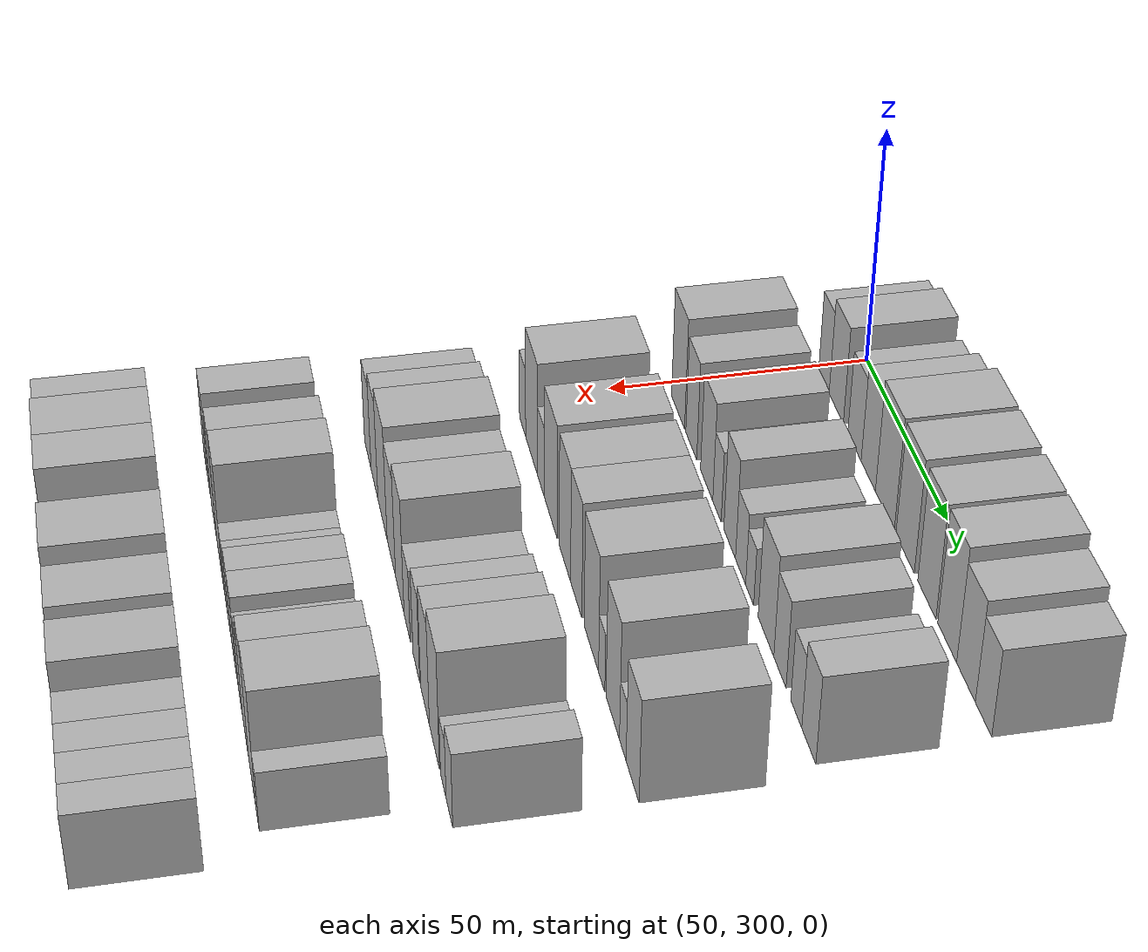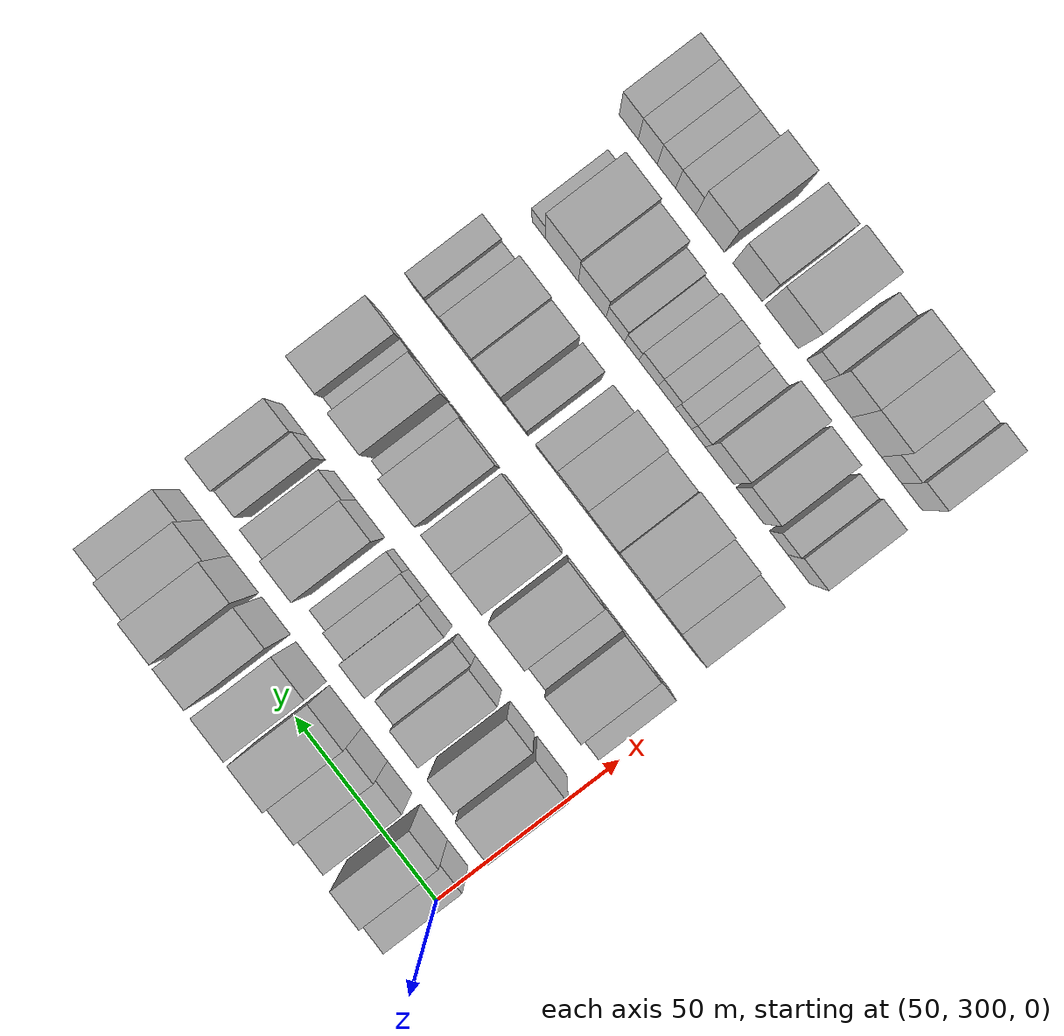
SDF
<sdf version="1.6">
 <world name="default">
  <model name="building_89">
   <static>1</static>
   <pose>50.0000 305.3187 0 0.000000 0.000000 0.000000</pose>
   <link name="link">
    <pose>0 0 9.00 0 0 0</pose>
    <collision name="collision"><geometry><box><size>20.0000 7.3415 18.0000</size></box></geometry></collision>
    <visual name="visual">
     <cast_shadows>0</cast_shadows>
     <geometry><box><size>20.0000 7.3415 18.0000</size></box></geometry>
     <material>
      <script>
       <uri>model://HANNAS_wall/materials/scripts</uri>
       <uri>model://HANNAS_wall/materials/textures</uri>
       <name>vrc/HANNAS_wall</name>
      </script>
     </material>
    </visual>
   </link>
  </model>
  <model name="building_90">
   <static>1</static>
   <pose>50.0000 313.8342 0 0.000000 0.000000 0.000000</pose>
   <link name="link">
    <pose>0 0 10.50 0 0 0</pose>
    <collision name="collision"><geometry><box><size>20.0000 9.6895 21.0000</size></box></geometry></collision>
    <visual name="visual">
     <cast_shadows>0</cast_shadows>
     <geometry><box><size>20.0000 9.6895 21.0000</size></box></geometry>
     <material>
      <script>
       <uri>model://HANNAS_wall/materials/scripts</uri>
       <uri>model://HANNAS_wall/materials/textures</uri>
       <name>vrc/HANNAS_wall</name>
      </script>
     </material>
    </visual>
   </link>
  </model>
  <model name="building_91">
   <static>1</static>
   <pose>50.0000 326.0368 0 0.000000 0.000000 0.000000</pose>
   <link name="link">
    <pose>0 0 9.00 0 0 0</pose>
    <collision name="collision"><geometry><box><size>20.0000 8.7158 18.0000</size></box></geometry></collision>
    <visual name="visual">
     <cast_shadows>0</cast_shadows>
     <geometry><box><size>20.0000 8.7158 18.0000</size></box></geometry>
     <material>
      <script>
       <uri>model://HANNAS_wall/materials/scripts</uri>
       <uri>model://HANNAS_wall/materials/textures</uri>
       <name>vrc/HANNAS_wall</name>
      </script>
     </material>
    </visual>
   </link>
  </model>
  <model name="building_92">
   <static>1</static>
   <pose>50.0000 334.9414 0 0.000000 0.000000 0.000000</pose>
   <link name="link">
    <pose>0 0 10.50 0 0 0</pose>
    <collision name="collision"><geometry><box><size>20.0000 9.0933 21.0000</size></box></geometry></collision>
    <visual name="visual">
     <cast_shadows>0</cast_shadows>
     <geometry><box><size>20.0000 9.0933 21.0000</size></box></geometry>
     <material>
      <script>
       <uri>model://HANNAS_wall/materials/scripts</uri>
       <uri>model://HANNAS_wall/materials/textures</uri>
       <name>vrc/HANNAS_wall</name>
      </script>
     </material>
    </visual>
   </link>
  </model>
  <model name="building_93">
   <static>1</static>
   <pose>50.0000 345.2844 0 0.000000 0.000000 0.000000</pose>
   <link name="link">
    <pose>0 0 12.00 0 0 0</pose>
    <collision name="collision"><geometry><box><size>20.0000 11.5927 24.0000</size></box></geometry></collision>
    <visual name="visual">
     <cast_shadows>0</cast_shadows>
     <geometry><box><size>20.0000 11.5927 24.0000</size></box></geometry>
     <material>
      <script>
       <uri>model://HANNAS_wall/materials/scripts</uri>
       <uri>model://HANNAS_wall/materials/textures</uri>
       <name>vrc/HANNAS_wall</name>
      </script>
     </material>
    </visual>
   </link>
  </model>
  <model name="building_94">
   <static>1</static>
   <pose>50.0000 357.5039 0 0.000000 0.000000 0.000000</pose>
   <link name="link">
    <pose>0 0 12.00 0 0 0</pose>
    <collision name="collision"><geometry><box><size>20.0000 10.8462 24.0000</size></box></geometry></collision>
    <visual name="visual">
     <cast_shadows>0</cast_shadows>
     <geometry><box><size>20.0000 10.8462 24.0000</size></box></geometry>
     <material>
      <script>
       <uri>model://HANNAS_wall/materials/scripts</uri>
       <uri>model://HANNAS_wall/materials/textures</uri>
       <name>vrc/HANNAS_wall</name>
      </script>
     </material>
    </visual>
   </link>
  </model>
  <model name="building_95">
   <static>1</static>
   <pose>50.0000 370.0650 0 0.000000 0.000000 0.000000</pose>
   <link name="link">
    <pose>0 0 12.00 0 0 0</pose>
    <collision name="collision"><geometry><box><size>20.0000 10.2760 24.0000</size></box></geometry></collision>
    <visual name="visual">
     <cast_shadows>0</cast_shadows>
     <geometry><box><size>20.0000 10.2760 24.0000</size></box></geometry>
     <material>
      <script>
       <uri>model://HANNAS_wall/materials/scripts</uri>
       <uri>model://HANNAS_wall/materials/textures</uri>
       <name>vrc/HANNAS_wall</name>
      </script>
     </material>
    </visual>
   </link>
  </model>
  <model name="building_96">
   <static>1</static>
   <pose>50.0000 381.3340 0 0.000000 0.000000 0.000000</pose>
   <link name="link">
    <pose>0 0 12.00 0 0 0</pose>
    <collision name="collision"><geometry><box><size>20.0000 10.2620 24.0000</size></box></geometry></collision>
    <visual name="visual">
     <cast_shadows>0</cast_shadows>
     <geometry><box><size>20.0000 10.2620 24.0000</size></box></geometry>
     <material>
      <script>
       <uri>model://HANNAS_wall/materials/scripts</uri>
       <uri>model://HANNAS_wall/materials/textures</uri>
       <name>vrc/HANNAS_wall</name>
      </script>
     </material>
    </visual>
   </link>
  </model>
  <model name="building_97">
   <static>1</static>
   <pose>50.0000 391.3692 0 0.000000 0.000000 0.000000</pose>
   <link name="link">
    <pose>0 0 10.50 0 0 0</pose>
    <collision name="collision"><geometry><box><size>20.0000 9.8085 21.0000</size></box></geometry></collision>
    <visual name="visual">
     <cast_shadows>0</cast_shadows>
     <geometry><box><size>20.0000 9.8085 21.0000</size></box></geometry>
     <material>
      <script>
       <uri>model://HANNAS_wall/materials/scripts</uri>
       <uri>model://HANNAS_wall/materials/textures</uri>
       <name>vrc/HANNAS_wall</name>
      </script>
     </material>
    </visual>
   </link>
  </model>
  <model name="building_98">
   <static>1</static>
   <pose>50.0000 400.4323 0 0.000000 0.000000 0.000000</pose>
   <link name="link">
    <pose>0 0 9.00 0 0 0</pose>
    <collision name="collision"><geometry><box><size>20.0000 8.3176 18.0000</size></box></geometry></collision>
    <visual name="visual">
     <cast_shadows>0</cast_shadows>
     <geometry><box><size>20.0000 8.3176 18.0000</size></box></geometry>
     <material>
      <script>
       <uri>model://HANNAS_wall/materials/scripts</uri>
       <uri>model://HANNAS_wall/materials/textures</uri>
       <name>vrc/HANNAS_wall</name>
      </script>
     </material>
    </visual>
   </link>
  </model>
  <model name="building_200">
   <static>1</static>
   <pose>79.0000 309.6515 0 0.000000 0.000000 0.000000</pose>
   <link name="link">
    <pose>0 0 12.00 0 0 0</pose>
    <collision name="collision"><geometry><box><size>20.0000 10.6163 24.0000</size></box></geometry></collision>
    <visual name="visual">
     <cast_shadows>0</cast_shadows>
     <geometry><box><size>20.0000 10.6163 24.0000</size></box></geometry>
     <material>
      <script>
       <uri>model://HANNAS_wall/materials/scripts</uri>
       <uri>model://HANNAS_wall/materials/textures</uri>
       <name>vrc/HANNAS_wall</name>
      </script>
     </material>
    </visual>
   </link>
  </model>
  <model name="building_201">
   <static>1</static>
   <pose>79.0000 320.2581 0 0.000000 0.000000 0.000000</pose>
   <link name="link">
    <pose>0 0 10.50 0 0 0</pose>
    <collision name="collision"><geometry><box><size>20.0000 8.5968 21.0000</size></box></geometry></collision>
    <visual name="visual">
     <cast_shadows>0</cast_shadows>
     <geometry><box><size>20.0000 8.5968 21.0000</size></box></geometry>
     <material>
      <script>
       <uri>model://HANNAS_wall/materials/scripts</uri>
       <uri>model://HANNAS_wall/materials/textures</uri>
       <name>vrc/HANNAS_wall</name>
      </script>
     </material>
    </visual>
   </link>
  </model>
  <model name="building_202">
   <static>1</static>
   <pose>79.0000 332.2292 0 0.000000 0.000000 0.000000</pose>
   <link name="link">
    <pose>0 0 10.50 0 0 0</pose>
    <collision name="collision"><geometry><box><size>20.0000 9.3454 21.0000</size></box></geometry></collision>
    <visual name="visual">
     <cast_shadows>0</cast_shadows>
     <geometry><box><size>20.0000 9.3454 21.0000</size></box></geometry>
     <material>
      <script>
       <uri>model://HANNAS_wall/materials/scripts</uri>
       <uri>model://HANNAS_wall/materials/textures</uri>
       <name>vrc/HANNAS_wall</name>
      </script>
     </material>
    </visual>
   </link>
  </model>
  <model name="building_203">
   <static>1</static>
   <pose>79.0000 339.9858 0 0.000000 0.000000 0.000000</pose>
   <link name="link">
    <pose>0 0 7.50 0 0 0</pose>
    <collision name="collision"><geometry><box><size>20.0000 6.1678 15.0000</size></box></geometry></collision>
    <visual name="visual">
     <cast_shadows>0</cast_shadows>
     <geometry><box><size>20.0000 6.1678 15.0000</size></box></geometry>
     <material>
      <script>
       <uri>model://HANNAS_wall/materials/scripts</uri>
       <uri>model://HANNAS_wall/materials/textures</uri>
       <name>vrc/HANNAS_wall</name>
      </script>
     </material>
    </visual>
   </link>
  </model>
  <model name="building_204">
   <static>1</static>
   <pose>79.0000 349.2821 0 0.000000 0.000000 0.000000</pose>
   <link name="link">
    <pose>0 0 10.50 0 0 0</pose>
    <collision name="collision"><geometry><box><size>20.0000 8.4247 21.0000</size></box></geometry></collision>
    <visual name="visual">
     <cast_shadows>0</cast_shadows>
     <geometry><box><size>20.0000 8.4247 21.0000</size></box></geometry>
     <material>
      <script>
       <uri>model://HANNAS_wall/materials/scripts</uri>
       <uri>model://HANNAS_wall/materials/textures</uri>
       <name>vrc/HANNAS_wall</name>
      </script>
     </material>
    </visual>
   </link>
  </model>
  <model name="building_205">
   <static>1</static>
   <pose>79.0000 357.0558 0 0.000000 0.000000 0.000000</pose>
   <link name="link">
    <pose>0 0 7.50 0 0 0</pose>
    <collision name="collision"><geometry><box><size>20.0000 7.1227 15.0000</size></box></geometry></collision>
    <visual name="visual">
     <cast_shadows>0</cast_shadows>
     <geometry><box><size>20.0000 7.1227 15.0000</size></box></geometry>
     <material>
      <script>
       <uri>model://HANNAS_wall/materials/scripts</uri>
       <uri>model://HANNAS_wall/materials/textures</uri>
       <name>vrc/HANNAS_wall</name>
      </script>
     </material>
    </visual>
   </link>
  </model>
  <model name="building_206">
   <static>1</static>
   <pose>79.0000 363.3635 0 0.000000 0.000000 0.000000</pose>
   <link name="link">
    <pose>0 0 6.00 0 0 0</pose>
    <collision name="collision"><geometry><box><size>20.0000 5.4928 12.0000</size></box></geometry></collision>
    <visual name="visual">
     <cast_shadows>0</cast_shadows>
     <geometry><box><size>20.0000 5.4928 12.0000</size></box></geometry>
     <material>
      <script>
       <uri>model://HANNAS_wall/materials/scripts</uri>
       <uri>model://HANNAS_wall/materials/textures</uri>
       <name>vrc/HANNAS_wall</name>
      </script>
     </material>
    </visual>
   </link>
  </model>
  <model name="building_207">
   <static>1</static>
   <pose>79.0000 374.3044 0 0.000000 0.000000 0.000000</pose>
   <link name="link">
    <pose>0 0 10.50 0 0 0</pose>
    <collision name="collision"><geometry><box><size>20.0000 10.3889 21.0000</size></box></geometry></collision>
    <visual name="visual">
     <cast_shadows>0</cast_shadows>
     <geometry><box><size>20.0000 10.3889 21.0000</size></box></geometry>
     <material>
      <script>
       <uri>model://HANNAS_wall/materials/scripts</uri>
       <uri>model://HANNAS_wall/materials/textures</uri>
       <name>vrc/HANNAS_wall</name>
      </script>
     </material>
    </visual>
   </link>
  </model>
  <model name="building_208">
   <static>1</static>
   <pose>79.0000 383.3989 0 0.000000 0.000000 0.000000</pose>
   <link name="link">
    <pose>0 0 9.00 0 0 0</pose>
    <collision name="collision"><geometry><box><size>20.0000 7.8001 18.0000</size></box></geometry></collision>
    <visual name="visual">
     <cast_shadows>0</cast_shadows>
     <geometry><box><size>20.0000 7.8001 18.0000</size></box></geometry>
     <material>
      <script>
       <uri>model://HANNAS_wall/materials/scripts</uri>
       <uri>model://HANNAS_wall/materials/textures</uri>
       <name>vrc/HANNAS_wall</name>
      </script>
     </material>
    </visual>
   </link>
  </model>
  <model name="building_209">
   <static>1</static>
   <pose>79.0000 393.6834 0 0.000000 0.000000 0.000000</pose>
   <link name="link">
    <pose>0 0 7.50 0 0 0</pose>
    <collision name="collision"><geometry><box><size>20.0000 6.7689 15.0000</size></box></geometry></collision>
    <visual name="visual">
     <cast_shadows>0</cast_shadows>
     <geometry><box><size>20.0000 6.7689 15.0000</size></box></geometry>
     <material>
      <script>
       <uri>model://HANNAS_wall/materials/scripts</uri>
       <uri>model://HANNAS_wall/materials/textures</uri>
       <name>vrc/HANNAS_wall</name>
      </script>
     </material>
    </visual>
   </link>
  </model>
  <model name="building_210">
   <static>1</static>
   <pose>79.0000 401.2757 0 0.000000 0.000000 0.000000</pose>
   <link name="link">
    <pose>0 0 9.00 0 0 0</pose>
    <collision name="collision"><geometry><box><size>20.0000 8.4157 18.0000</size></box></geometry></collision>
    <visual name="visual">
     <cast_shadows>0</cast_shadows>
     <geometry><box><size>20.0000 8.4157 18.0000</size></box></geometry>
     <material>
      <script>
       <uri>model://HANNAS_wall/materials/scripts</uri>
       <uri>model://HANNAS_wall/materials/textures</uri>
       <name>vrc/HANNAS_wall</name>
      </script>
     </material>
    </visual>
   </link>
  </model>
  <model name="building_320">
   <static>1</static>
   <pose>108.0000 308.8169 0 0.000000 0.000000 0.000000</pose>
   <link name="link">
    <pose>0 0 7.50 0 0 0</pose>
    <collision name="collision"><geometry><box><size>20.0000 6.3034 15.0000</size></box></geometry></collision>
    <visual name="visual">
     <cast_shadows>0</cast_shadows>
     <geometry><box><size>20.0000 6.3034 15.0000</size></box></geometry>
     <material>
      <script>
       <uri>model://HANNAS_wall/materials/scripts</uri>
       <uri>model://HANNAS_wall/materials/textures</uri>
       <name>vrc/HANNAS_wall</name>
      </script>
     </material>
    </visual>
   </link>
  </model>
  <model name="building_321">
   <static>1</static>
   <pose>108.0000 317.8354 0 0.000000 0.000000 0.000000</pose>
   <link name="link">
    <pose>0 0 12.00 0 0 0</pose>
    <collision name="collision"><geometry><box><size>20.0000 11.7336 24.0000</size></box></geometry></collision>
    <visual name="visual">
     <cast_shadows>0</cast_shadows>
     <geometry><box><size>20.0000 11.7336 24.0000</size></box></geometry>
     <material>
      <script>
       <uri>model://HANNAS_wall/materials/scripts</uri>
       <uri>model://HANNAS_wall/materials/textures</uri>
       <name>vrc/HANNAS_wall</name>
      </script>
     </material>
    </visual>
   </link>
  </model>
  <model name="building_322">
   <static>1</static>
   <pose>108.0000 326.9706 0 0.000000 0.000000 0.000000</pose>
   <link name="link">
    <pose>0 0 7.50 0 0 0</pose>
    <collision name="collision"><geometry><box><size>20.0000 6.5367 15.0000</size></box></geometry></collision>
    <visual name="visual">
     <cast_shadows>0</cast_shadows>
     <geometry><box><size>20.0000 6.5367 15.0000</size></box></geometry>
     <material>
      <script>
       <uri>model://HANNAS_wall/materials/scripts</uri>
       <uri>model://HANNAS_wall/materials/textures</uri>
       <name>vrc/HANNAS_wall</name>
      </script>
     </material>
    </visual>
   </link>
  </model>
  <model name="building_323">
   <static>1</static>
   <pose>108.0000 336.1850 0 0.000000 0.000000 0.000000</pose>
   <link name="link">
    <pose>0 0 12.00 0 0 0</pose>
    <collision name="collision"><geometry><box><size>20.0000 11.8922 24.0000</size></box></geometry></collision>
    <visual name="visual">
     <cast_shadows>0</cast_shadows>
     <geometry><box><size>20.0000 11.8922 24.0000</size></box></geometry>
     <material>
      <script>
       <uri>model://HANNAS_wall/materials/scripts</uri>
       <uri>model://HANNAS_wall/materials/textures</uri>
       <name>vrc/HANNAS_wall</name>
      </script>
     </material>
    </visual>
   </link>
  </model>
  <model name="building_324">
   <static>1</static>
   <pose>108.0000 349.2009 0 0.000000 0.000000 0.000000</pose>
   <link name="link">
    <pose>0 0 12.00 0 0 0</pose>
    <collision name="collision"><geometry><box><size>20.0000 10.1397 24.0000</size></box></geometry></collision>
    <visual name="visual">
     <cast_shadows>0</cast_shadows>
     <geometry><box><size>20.0000 10.1397 24.0000</size></box></geometry>
     <material>
      <script>
       <uri>model://HANNAS_wall/materials/scripts</uri>
       <uri>model://HANNAS_wall/materials/textures</uri>
       <name>vrc/HANNAS_wall</name>
      </script>
     </material>
    </visual>
   </link>
  </model>
  <model name="building_325">
   <static>1</static>
   <pose>108.0000 359.1235 0 0.000000 0.000000 0.000000</pose>
   <link name="link">
    <pose>0 0 12.00 0 0 0</pose>
    <collision name="collision"><geometry><box><size>20.0000 9.7056 24.0000</size></box></geometry></collision>
    <visual name="visual">
     <cast_shadows>0</cast_shadows>
     <geometry><box><size>20.0000 9.7056 24.0000</size></box></geometry>
     <material>
      <script>
       <uri>model://HANNAS_wall/materials/scripts</uri>
       <uri>model://HANNAS_wall/materials/textures</uri>
       <name>vrc/HANNAS_wall</name>
      </script>
     </material>
    </visual>
   </link>
  </model>
  <model name="building_326">
   <static>1</static>
   <pose>108.0000 371.9146 0 0.000000 0.000000 0.000000</pose>
   <link name="link">
    <pose>0 0 12.00 0 0 0</pose>
    <collision name="collision"><geometry><box><size>20.0000 11.8764 24.0000</size></box></geometry></collision>
    <visual name="visual">
     <cast_shadows>0</cast_shadows>
     <geometry><box><size>20.0000 11.8764 24.0000</size></box></geometry>
     <material>
      <script>
       <uri>model://HANNAS_wall/materials/scripts</uri>
       <uri>model://HANNAS_wall/materials/textures</uri>
       <name>vrc/HANNAS_wall</name>
      </script>
     </material>
    </visual>
   </link>
  </model>
  <model name="building_327">
   <static>1</static>
   <pose>108.0000 380.3528 0 0.000000 0.000000 0.000000</pose>
   <link name="link">
    <pose>0 0 6.00 0 0 0</pose>
    <collision name="collision"><geometry><box><size>20.0000 5.0001 12.0000</size></box></geometry></collision>
    <visual name="visual">
     <cast_shadows>0</cast_shadows>
     <geometry><box><size>20.0000 5.0001 12.0000</size></box></geometry>
     <material>
      <script>
       <uri>model://HANNAS_wall/materials/scripts</uri>
       <uri>model://HANNAS_wall/materials/textures</uri>
       <name>vrc/HANNAS_wall</name>
      </script>
     </material>
    </visual>
   </link>
  </model>
  <model name="building_328">
   <static>1</static>
   <pose>108.0000 389.0569 0 0.000000 0.000000 0.000000</pose>
   <link name="link">
    <pose>0 0 12.00 0 0 0</pose>
    <collision name="collision"><geometry><box><size>20.0000 10.4081 24.0000</size></box></geometry></collision>
    <visual name="visual">
     <cast_shadows>0</cast_shadows>
     <geometry><box><size>20.0000 10.4081 24.0000</size></box></geometry>
     <material>
      <script>
       <uri>model://HANNAS_wall/materials/scripts</uri>
       <uri>model://HANNAS_wall/materials/textures</uri>
       <name>vrc/HANNAS_wall</name>
      </script>
     </material>
    </visual>
   </link>
  </model>
  <model name="building_329">
   <static>1</static>
   <pose>108.0000 396.7579 0 0.000000 0.000000 0.000000</pose>
   <link name="link">
    <pose>0 0 6.00 0 0 0</pose>
    <collision name="collision"><geometry><box><size>20.0000 4.9939 12.0000</size></box></geometry></collision>
    <visual name="visual">
     <cast_shadows>0</cast_shadows>
     <geometry><box><size>20.0000 4.9939 12.0000</size></box></geometry>
     <material>
      <script>
       <uri>model://HANNAS_wall/materials/scripts</uri>
       <uri>model://HANNAS_wall/materials/textures</uri>
       <name>vrc/HANNAS_wall</name>
      </script>
     </material>
    </visual>
   </link>
  </model>
  <model name="building_330">
   <static>1</static>
   <pose>108.0000 404.0358 0 0.000000 0.000000 0.000000</pose>
   <link name="link">
    <pose>0 0 10.50 0 0 0</pose>
    <collision name="collision"><geometry><box><size>20.0000 9.5619 21.0000</size></box></geometry></collision>
    <visual name="visual">
     <cast_shadows>0</cast_shadows>
     <geometry><box><size>20.0000 9.5619 21.0000</size></box></geometry>
     <material>
      <script>
       <uri>model://HANNAS_wall/materials/scripts</uri>
       <uri>model://HANNAS_wall/materials/textures</uri>
       <name>vrc/HANNAS_wall</name>
      </script>
     </material>
    </visual>
   </link>
  </model>
  <model name="building_434">
   <static>1</static>
   <pose>137.0000 312.1959 0 0.000000 0.000000 0.000000</pose>
   <link name="link">
    <pose>0 0 9.00 0 0 0</pose>
    <collision name="collision"><geometry><box><size>20.0000 8.8097 18.0000</size></box></geometry></collision>
    <visual name="visual">
     <cast_shadows>0</cast_shadows>
     <geometry><box><size>20.0000 8.8097 18.0000</size></box></geometry>
     <material>
      <script>
       <uri>model://HANNAS_wall/materials/scripts</uri>
       <uri>model://HANNAS_wall/materials/textures</uri>
       <name>vrc/HANNAS_wall</name>
      </script>
     </material>
    </visual>
   </link>
  </model>
  <model name="building_435">
   <static>1</static>
   <pose>137.0000 321.1087 0 0.000000 0.000000 0.000000</pose>
   <link name="link">
    <pose>0 0 10.50 0 0 0</pose>
    <collision name="collision"><geometry><box><size>20.0000 9.0159 21.0000</size></box></geometry></collision>
    <visual name="visual">
     <cast_shadows>0</cast_shadows>
     <geometry><box><size>20.0000 9.0159 21.0000</size></box></geometry>
     <material>
      <script>
       <uri>model://HANNAS_wall/materials/scripts</uri>
       <uri>model://HANNAS_wall/materials/textures</uri>
       <name>vrc/HANNAS_wall</name>
      </script>
     </material>
    </visual>
   </link>
  </model>
  <model name="building_436">
   <static>1</static>
   <pose>137.0000 331.4161 0 0.000000 0.000000 0.000000</pose>
   <link name="link">
    <pose>0 0 12.00 0 0 0</pose>
    <collision name="collision"><geometry><box><size>20.0000 11.5988 24.0000</size></box></geometry></collision>
    <visual name="visual">
     <cast_shadows>0</cast_shadows>
     <geometry><box><size>20.0000 11.5988 24.0000</size></box></geometry>
     <material>
      <script>
       <uri>model://HANNAS_wall/materials/scripts</uri>
       <uri>model://HANNAS_wall/materials/textures</uri>
       <name>vrc/HANNAS_wall</name>
      </script>
     </material>
    </visual>
   </link>
  </model>
  <model name="building_437">
   <static>1</static>
   <pose>137.0000 342.3641 0 0.000000 0.000000 0.000000</pose>
   <link name="link">
    <pose>0 0 10.50 0 0 0</pose>
    <collision name="collision"><geometry><box><size>20.0000 10.2972 21.0000</size></box></geometry></collision>
    <visual name="visual">
     <cast_shadows>0</cast_shadows>
     <geometry><box><size>20.0000 10.2972 21.0000</size></box></geometry>
     <material>
      <script>
       <uri>model://HANNAS_wall/materials/scripts</uri>
       <uri>model://HANNAS_wall/materials/textures</uri>
       <name>vrc/HANNAS_wall</name>
      </script>
     </material>
    </visual>
   </link>
  </model>
  <model name="building_438">
   <static>1</static>
   <pose>137.0000 352.5214 0 0.000000 0.000000 0.000000</pose>
   <link name="link">
    <pose>0 0 12.00 0 0 0</pose>
    <collision name="collision"><geometry><box><size>20.0000 10.0173 24.0000</size></box></geometry></collision>
    <visual name="visual">
     <cast_shadows>0</cast_shadows>
     <geometry><box><size>20.0000 10.0173 24.0000</size></box></geometry>
     <material>
      <script>
       <uri>model://HANNAS_wall/materials/scripts</uri>
       <uri>model://HANNAS_wall/materials/textures</uri>
       <name>vrc/HANNAS_wall</name>
      </script>
     </material>
    </visual>
   </link>
  </model>
  <model name="building_439">
   <static>1</static>
   <pose>137.0000 361.1345 0 0.000000 0.000000 0.000000</pose>
   <link name="link">
    <pose>0 0 7.50 0 0 0</pose>
    <collision name="collision"><geometry><box><size>20.0000 7.2091 15.0000</size></box></geometry></collision>
    <visual name="visual">
     <cast_shadows>0</cast_shadows>
     <geometry><box><size>20.0000 7.2091 15.0000</size></box></geometry>
     <material>
      <script>
       <uri>model://HANNAS_wall/materials/scripts</uri>
       <uri>model://HANNAS_wall/materials/textures</uri>
       <name>vrc/HANNAS_wall</name>
      </script>
     </material>
    </visual>
   </link>
  </model>
  <model name="building_440">
   <static>1</static>
   <pose>137.0000 371.4395 0 0.000000 0.000000 0.000000</pose>
   <link name="link">
    <pose>0 0 9.00 0 0 0</pose>
    <collision name="collision"><geometry><box><size>20.0000 7.4009 18.0000</size></box></geometry></collision>
    <visual name="visual">
     <cast_shadows>0</cast_shadows>
     <geometry><box><size>20.0000 7.4009 18.0000</size></box></geometry>
     <material>
      <script>
       <uri>model://HANNAS_wall/materials/scripts</uri>
       <uri>model://HANNAS_wall/materials/textures</uri>
       <name>vrc/HANNAS_wall</name>
      </script>
     </material>
    </visual>
   </link>
  </model>
  <model name="building_441">
   <static>1</static>
   <pose>137.0000 380.7924 0 0.000000 0.000000 0.000000</pose>
   <link name="link">
    <pose>0 0 10.50 0 0 0</pose>
    <collision name="collision"><geometry><box><size>20.0000 9.3047 21.0000</size></box></geometry></collision>
    <visual name="visual">
     <cast_shadows>0</cast_shadows>
     <geometry><box><size>20.0000 9.3047 21.0000</size></box></geometry>
     <material>
      <script>
       <uri>model://HANNAS_wall/materials/scripts</uri>
       <uri>model://HANNAS_wall/materials/textures</uri>
       <name>vrc/HANNAS_wall</name>
      </script>
     </material>
    </visual>
   </link>
  </model>
  <model name="building_442">
   <static>1</static>
   <pose>137.0000 390.6415 0 0.000000 0.000000 0.000000</pose>
   <link name="link">
    <pose>0 0 12.00 0 0 0</pose>
    <collision name="collision"><geometry><box><size>20.0000 10.3936 24.0000</size></box></geometry></collision>
    <visual name="visual">
     <cast_shadows>0</cast_shadows>
     <geometry><box><size>20.0000 10.3936 24.0000</size></box></geometry>
     <material>
      <script>
       <uri>model://HANNAS_wall/materials/scripts</uri>
       <uri>model://HANNAS_wall/materials/textures</uri>
       <name>vrc/HANNAS_wall</name>
      </script>
     </material>
    </visual>
   </link>
  </model>
  <model name="building_443">
   <static>1</static>
   <pose>137.0000 399.5806 0 0.000000 0.000000 0.000000</pose>
   <link name="link">
    <pose>0 0 6.00 0 0 0</pose>
    <collision name="collision"><geometry><box><size>20.0000 5.4845 12.0000</size></box></geometry></collision>
    <visual name="visual">
     <cast_shadows>0</cast_shadows>
     <geometry><box><size>20.0000 5.4845 12.0000</size></box></geometry>
     <material>
      <script>
       <uri>model://HANNAS_wall/materials/scripts</uri>
       <uri>model://HANNAS_wall/materials/textures</uri>
       <name>vrc/HANNAS_wall</name>
      </script>
     </material>
    </visual>
   </link>
  </model>
  <model name="building_444">
   <static>1</static>
   <pose>137.0000 405.5585 0 0.000000 0.000000 0.000000</pose>
   <link name="link">
    <pose>0 0 7.50 0 0 0</pose>
    <collision name="collision"><geometry><box><size>20.0000 6.4713 15.0000</size></box></geometry></collision>
    <visual name="visual">
     <cast_shadows>0</cast_shadows>
     <geometry><box><size>20.0000 6.4713 15.0000</size></box></geometry>
     <material>
      <script>
       <uri>model://HANNAS_wall/materials/scripts</uri>
       <uri>model://HANNAS_wall/materials/textures</uri>
       <name>vrc/HANNAS_wall</name>
      </script>
     </material>
    </visual>
   </link>
  </model>
  <model name="building_546">
   <static>1</static>
   <pose>166.0000 309.1671 0 0.000000 0.000000 0.000000</pose>
   <link name="link">
    <pose>0 0 9.00 0 0 0</pose>
    <collision name="collision"><geometry><box><size>20.0000 8.0499 18.0000</size></box></geometry></collision>
    <visual name="visual">
     <cast_shadows>0</cast_shadows>
     <geometry><box><size>20.0000 8.0499 18.0000</size></box></geometry>
     <material>
      <script>
       <uri>model://HANNAS_wall/materials/scripts</uri>
       <uri>model://HANNAS_wall/materials/textures</uri>
       <name>vrc/HANNAS_wall</name>
      </script>
     </material>
    </visual>
   </link>
  </model>
  <model name="building_547">
   <static>1</static>
   <pose>166.0000 316.3912 0 0.000000 0.000000 0.000000</pose>
   <link name="link">
    <pose>0 0 7.50 0 0 0</pose>
    <collision name="collision"><geometry><box><size>20.0000 6.3983 15.0000</size></box></geometry></collision>
    <visual name="visual">
     <cast_shadows>0</cast_shadows>
     <geometry><box><size>20.0000 6.3983 15.0000</size></box></geometry>
     <material>
      <script>
       <uri>model://HANNAS_wall/materials/scripts</uri>
       <uri>model://HANNAS_wall/materials/textures</uri>
       <name>vrc/HANNAS_wall</name>
      </script>
     </material>
    </visual>
   </link>
  </model>
  <model name="building_548">
   <static>1</static>
   <pose>166.0000 326.5337 0 0.000000 0.000000 0.000000</pose>
   <link name="link">
    <pose>0 0 10.50 0 0 0</pose>
    <collision name="collision"><geometry><box><size>20.0000 9.8868 21.0000</size></box></geometry></collision>
    <visual name="visual">
     <cast_shadows>0</cast_shadows>
     <geometry><box><size>20.0000 9.8868 21.0000</size></box></geometry>
     <material>
      <script>
       <uri>model://HANNAS_wall/materials/scripts</uri>
       <uri>model://HANNAS_wall/materials/textures</uri>
       <name>vrc/HANNAS_wall</name>
      </script>
     </material>
    </visual>
   </link>
  </model>
  <model name="building_549">
   <static>1</static>
   <pose>166.0000 337.5171 0 0.000000 0.000000 0.000000</pose>
   <link name="link">
    <pose>0 0 12.00 0 0 0</pose>
    <collision name="collision"><geometry><box><size>20.0000 10.0800 24.0000</size></box></geometry></collision>
    <visual name="visual">
     <cast_shadows>0</cast_shadows>
     <geometry><box><size>20.0000 10.0800 24.0000</size></box></geometry>
     <material>
      <script>
       <uri>model://HANNAS_wall/materials/scripts</uri>
       <uri>model://HANNAS_wall/materials/textures</uri>
       <name>vrc/HANNAS_wall</name>
      </script>
     </material>
    </visual>
   </link>
  </model>
  <model name="building_550">
   <static>1</static>
   <pose>166.0000 344.9985 0 0.000000 0.000000 0.000000</pose>
   <link name="link">
    <pose>0 0 6.00 0 0 0</pose>
    <collision name="collision"><geometry><box><size>20.0000 4.8827 12.0000</size></box></geometry></collision>
    <visual name="visual">
     <cast_shadows>0</cast_shadows>
     <geometry><box><size>20.0000 4.8827 12.0000</size></box></geometry>
     <material>
      <script>
       <uri>model://HANNAS_wall/materials/scripts</uri>
       <uri>model://HANNAS_wall/materials/textures</uri>
       <name>vrc/HANNAS_wall</name>
      </script>
     </material>
    </visual>
   </link>
  </model>
  <model name="building_551">
   <static>1</static>
   <pose>166.0000 350.2778 0 0.000000 0.000000 0.000000</pose>
   <link name="link">
    <pose>0 0 6.00 0 0 0</pose>
    <collision name="collision"><geometry><box><size>20.0000 5.6759 12.0000</size></box></geometry></collision>
    <visual name="visual">
     <cast_shadows>0</cast_shadows>
     <geometry><box><size>20.0000 5.6759 12.0000</size></box></geometry>
     <material>
      <script>
       <uri>model://HANNAS_wall/materials/scripts</uri>
       <uri>model://HANNAS_wall/materials/textures</uri>
       <name>vrc/HANNAS_wall</name>
      </script>
     </material>
    </visual>
   </link>
  </model>
  <model name="building_552">
   <static>1</static>
   <pose>166.0000 356.1909 0 0.000000 0.000000 0.000000</pose>
   <link name="link">
    <pose>0 0 7.50 0 0 0</pose>
    <collision name="collision"><geometry><box><size>20.0000 6.1502 15.0000</size></box></geometry></collision>
    <visual name="visual">
     <cast_shadows>0</cast_shadows>
     <geometry><box><size>20.0000 6.1502 15.0000</size></box></geometry>
     <material>
      <script>
       <uri>model://HANNAS_wall/materials/scripts</uri>
       <uri>model://HANNAS_wall/materials/textures</uri>
       <name>vrc/HANNAS_wall</name>
      </script>
     </material>
    </visual>
   </link>
  </model>
  <model name="building_553">
   <static>1</static>
   <pose>166.0000 362.7036 0 0.000000 0.000000 0.000000</pose>
   <link name="link">
    <pose>0 0 7.50 0 0 0</pose>
    <collision name="collision"><geometry><box><size>20.0000 6.8752 15.0000</size></box></geometry></collision>
    <visual name="visual">
     <cast_shadows>0</cast_shadows>
     <geometry><box><size>20.0000 6.8752 15.0000</size></box></geometry>
     <material>
      <script>
       <uri>model://HANNAS_wall/materials/scripts</uri>
       <uri>model://HANNAS_wall/materials/textures</uri>
       <name>vrc/HANNAS_wall</name>
      </script>
     </material>
    </visual>
   </link>
  </model>
  <model name="building_554">
   <static>1</static>
   <pose>166.0000 368.6697 0 0.000000 0.000000 0.000000</pose>
   <link name="link">
    <pose>0 0 6.00 0 0 0</pose>
    <collision name="collision"><geometry><box><size>20.0000 5.0570 12.0000</size></box></geometry></collision>
    <visual name="visual">
     <cast_shadows>0</cast_shadows>
     <geometry><box><size>20.0000 5.0570 12.0000</size></box></geometry>
     <material>
      <script>
       <uri>model://HANNAS_wall/materials/scripts</uri>
       <uri>model://HANNAS_wall/materials/textures</uri>
       <name>vrc/HANNAS_wall</name>
      </script>
     </material>
    </visual>
   </link>
  </model>
  <model name="building_555">
   <static>1</static>
   <pose>166.0000 374.5436 0 0.000000 0.000000 0.000000</pose>
   <link name="link">
    <pose>0 0 7.50 0 0 0</pose>
    <collision name="collision"><geometry><box><size>20.0000 6.6908 15.0000</size></box></geometry></collision>
    <visual name="visual">
     <cast_shadows>0</cast_shadows>
     <geometry><box><size>20.0000 6.6908 15.0000</size></box></geometry>
     <material>
      <script>
       <uri>model://HANNAS_wall/materials/scripts</uri>
       <uri>model://HANNAS_wall/materials/textures</uri>
       <name>vrc/HANNAS_wall</name>
      </script>
     </material>
    </visual>
   </link>
  </model>
  <model name="building_556">
   <static>1</static>
   <pose>166.0000 382.7824 0 0.000000 0.000000 0.000000</pose>
   <link name="link">
    <pose>0 0 10.50 0 0 0</pose>
    <collision name="collision"><geometry><box><size>20.0000 9.7869 21.0000</size></box></geometry></collision>
    <visual name="visual">
     <cast_shadows>0</cast_shadows>
     <geometry><box><size>20.0000 9.7869 21.0000</size></box></geometry>
     <material>
      <script>
       <uri>model://HANNAS_wall/materials/scripts</uri>
       <uri>model://HANNAS_wall/materials/textures</uri>
       <name>vrc/HANNAS_wall</name>
      </script>
     </material>
    </visual>
   </link>
  </model>
  <model name="building_557">
   <static>1</static>
   <pose>166.0000 393.4857 0 0.000000 0.000000 0.000000</pose>
   <link name="link">
    <pose>0 0 12.00 0 0 0</pose>
    <collision name="collision"><geometry><box><size>20.0000 11.6197 24.0000</size></box></geometry></collision>
    <visual name="visual">
     <cast_shadows>0</cast_shadows>
     <geometry><box><size>20.0000 11.6197 24.0000</size></box></geometry>
     <material>
      <script>
       <uri>model://HANNAS_wall/materials/scripts</uri>
       <uri>model://HANNAS_wall/materials/textures</uri>
       <name>vrc/HANNAS_wall</name>
      </script>
     </material>
    </visual>
   </link>
  </model>
  <model name="building_558">
   <static>1</static>
   <pose>166.0000 401.7087 0 0.000000 0.000000 0.000000</pose>
   <link name="link">
    <pose>0 0 6.00 0 0 0</pose>
    <collision name="collision"><geometry><box><size>20.0000 4.8264 12.0000</size></box></geometry></collision>
    <visual name="visual">
     <cast_shadows>0</cast_shadows>
     <geometry><box><size>20.0000 4.8264 12.0000</size></box></geometry>
     <material>
      <script>
       <uri>model://HANNAS_wall/materials/scripts</uri>
       <uri>model://HANNAS_wall/materials/textures</uri>
       <name>vrc/HANNAS_wall</name>
      </script>
     </material>
    </visual>
   </link>
  </model>
  <model name="building_658">
   <static>1</static>
   <pose>195.0000 306.7666 0 0.000000 0.000000 0.000000</pose>
   <link name="link">
    <pose>0 0 9.00 0 0 0</pose>
    <collision name="collision"><geometry><box><size>20.0000 7.2723 18.0000</size></box></geometry></collision>
    <visual name="visual">
     <cast_shadows>0</cast_shadows>
     <geometry><box><size>20.0000 7.2723 18.0000</size></box></geometry>
     <material>
      <script>
       <uri>model://HANNAS_wall/materials/scripts</uri>
       <uri>model://HANNAS_wall/materials/textures</uri>
       <name>vrc/HANNAS_wall</name>
      </script>
     </material>
    </visual>
   </link>
  </model>
  <model name="building_659">
   <static>1</static>
   <pose>195.0000 314.0072 0 0.000000 0.000000 0.000000</pose>
   <link name="link">
    <pose>0 0 7.50 0 0 0</pose>
    <collision name="collision"><geometry><box><size>20.0000 7.2090 15.0000</size></box></geometry></collision>
    <visual name="visual">
     <cast_shadows>0</cast_shadows>
     <geometry><box><size>20.0000 7.2090 15.0000</size></box></geometry>
     <material>
      <script>
       <uri>model://HANNAS_wall/materials/scripts</uri>
       <uri>model://HANNAS_wall/materials/textures</uri>
       <name>vrc/HANNAS_wall</name>
      </script>
     </material>
    </visual>
   </link>
  </model>
  <model name="building_660">
   <static>1</static>
   <pose>195.0000 322.9717 0 0.000000 0.000000 0.000000</pose>
   <link name="link">
    <pose>0 0 12.00 0 0 0</pose>
    <collision name="collision"><geometry><box><size>20.0000 10.7199 24.0000</size></box></geometry></collision>
    <visual name="visual">
     <cast_shadows>0</cast_shadows>
     <geometry><box><size>20.0000 10.7199 24.0000</size></box></geometry>
     <material>
      <script>
       <uri>model://HANNAS_wall/materials/scripts</uri>
       <uri>model://HANNAS_wall/materials/textures</uri>
       <name>vrc/HANNAS_wall</name>
      </script>
     </material>
    </visual>
   </link>
  </model>
  <model name="building_661">
   <static>1</static>
   <pose>195.0000 333.2196 0 0.000000 0.000000 0.000000</pose>
   <link name="link">
    <pose>0 0 12.00 0 0 0</pose>
    <collision name="collision"><geometry><box><size>20.0000 9.7760 24.0000</size></box></geometry></collision>
    <visual name="visual">
     <cast_shadows>0</cast_shadows>
     <geometry><box><size>20.0000 9.7760 24.0000</size></box></geometry>
     <material>
      <script>
       <uri>model://HANNAS_wall/materials/scripts</uri>
       <uri>model://HANNAS_wall/materials/textures</uri>
       <name>vrc/HANNAS_wall</name>
      </script>
     </material>
    </visual>
   </link>
  </model>
  <model name="building_662">
   <static>1</static>
   <pose>195.0000 341.1363 0 0.000000 0.000000 0.000000</pose>
   <link name="link">
    <pose>0 0 7.50 0 0 0</pose>
    <collision name="collision"><geometry><box><size>20.0000 6.0573 15.0000</size></box></geometry></collision>
    <visual name="visual">
     <cast_shadows>0</cast_shadows>
     <geometry><box><size>20.0000 6.0573 15.0000</size></box></geometry>
     <material>
      <script>
       <uri>model://HANNAS_wall/materials/scripts</uri>
       <uri>model://HANNAS_wall/materials/textures</uri>
       <name>vrc/HANNAS_wall</name>
      </script>
     </material>
    </visual>
   </link>
  </model>
  <model name="building_663">
   <static>1</static>
   <pose>195.0000 353.1006 0 0.000000 0.000000 0.000000</pose>
   <link name="link">
    <pose>0 0 12.00 0 0 0</pose>
    <collision name="collision"><geometry><box><size>20.0000 11.8714 24.0000</size></box></geometry></collision>
    <visual name="visual">
     <cast_shadows>0</cast_shadows>
     <geometry><box><size>20.0000 11.8714 24.0000</size></box></geometry>
     <material>
      <script>
       <uri>model://HANNAS_wall/materials/scripts</uri>
       <uri>model://HANNAS_wall/materials/textures</uri>
       <name>vrc/HANNAS_wall</name>
      </script>
     </material>
    </visual>
   </link>
  </model>
  <model name="building_664">
   <static>1</static>
   <pose>195.0000 365.2488 0 0.000000 0.000000 0.000000</pose>
   <link name="link">
    <pose>0 0 10.50 0 0 0</pose>
    <collision name="collision"><geometry><box><size>20.0000 10.4250 21.0000</size></box></geometry></collision>
    <visual name="visual">
     <cast_shadows>0</cast_shadows>
     <geometry><box><size>20.0000 10.4250 21.0000</size></box></geometry>
     <material>
      <script>
       <uri>model://HANNAS_wall/materials/scripts</uri>
       <uri>model://HANNAS_wall/materials/textures</uri>
       <name>vrc/HANNAS_wall</name>
      </script>
     </material>
    </visual>
   </link>
  </model>
  <model name="building_665">
   <static>1</static>
   <pose>195.0000 378.5466 0 0.000000 0.000000 0.000000</pose>
   <link name="link">
    <pose>0 0 10.50 0 0 0</pose>
    <collision name="collision"><geometry><box><size>20.0000 10.1705 21.0000</size></box></geometry></collision>
    <visual name="visual">
     <cast_shadows>0</cast_shadows>
     <geometry><box><size>20.0000 10.1705 21.0000</size></box></geometry>
     <material>
      <script>
       <uri>model://HANNAS_wall/materials/scripts</uri>
       <uri>model://HANNAS_wall/materials/textures</uri>
       <name>vrc/HANNAS_wall</name>
      </script>
     </material>
    </visual>
   </link>
  </model>
  <model name="building_666">
   <static>1</static>
   <pose>195.0000 387.2664 0 0.000000 0.000000 0.000000</pose>
   <link name="link">
    <pose>0 0 7.50 0 0 0</pose>
    <collision name="collision"><geometry><box><size>20.0000 7.2691 15.0000</size></box></geometry></collision>
    <visual name="visual">
     <cast_shadows>0</cast_shadows>
     <geometry><box><size>20.0000 7.2691 15.0000</size></box></geometry>
     <material>
      <script>
       <uri>model://HANNAS_wall/materials/scripts</uri>
       <uri>model://HANNAS_wall/materials/textures</uri>
       <name>vrc/HANNAS_wall</name>
      </script>
     </material>
    </visual>
   </link>
  </model>
  <model name="building_667">
   <static>1</static>
   <pose>195.0000 394.1695 0 0.000000 0.000000 0.000000</pose>
   <link name="link">
    <pose>0 0 7.50 0 0 0</pose>
    <collision name="collision"><geometry><box><size>20.0000 6.5372 15.0000</size></box></geometry></collision>
    <visual name="visual">
     <cast_shadows>0</cast_shadows>
     <geometry><box><size>20.0000 6.5372 15.0000</size></box></geometry>
     <material>
      <script>
       <uri>model://HANNAS_wall/materials/scripts</uri>
       <uri>model://HANNAS_wall/materials/textures</uri>
       <name>vrc/HANNAS_wall</name>
      </script>
     </material>
    </visual>
   </link>
  </model>
  <model name="building_668">
   <static>1</static>
   <pose>195.0000 400.8369 0 0.000000 0.000000 0.000000</pose>
   <link name="link">
    <pose>0 0 7.50 0 0 0</pose>
    <collision name="collision"><geometry><box><size>20.0000 6.7977 15.0000</size></box></geometry></collision>
    <visual name="visual">
     <cast_shadows>0</cast_shadows>
     <geometry><box><size>20.0000 6.7977 15.0000</size></box></geometry>
     <material>
      <script>
       <uri>model://HANNAS_wall/materials/scripts</uri>
       <uri>model://HANNAS_wall/materials/textures</uri>
       <name>vrc/HANNAS_wall</name>
      </script>
     </material>
    </visual>
   </link>
  </model>
  <model name="building_669">
   <static>1</static>
   <pose>195.0000 407.6114 0 0.000000 0.000000 0.000000</pose>
   <link name="link">
    <pose>0 0 7.50 0 0 0</pose>
    <collision name="collision"><geometry><box><size>20.0000 6.7512 15.0000</size></box></geometry></collision>
    <visual name="visual">
     <cast_shadows>0</cast_shadows>
     <geometry><box><size>20.0000 6.7512 15.0000</size></box></geometry>
     <material>
      <script>
       <uri>model://HANNAS_wall/materials/scripts</uri>
       <uri>model://HANNAS_wall/materials/textures</uri>
       <name>vrc/HANNAS_wall</name>
      </script>
     </material>
    </visual>
   </link>
  </model>
 </world>
</sdf>
